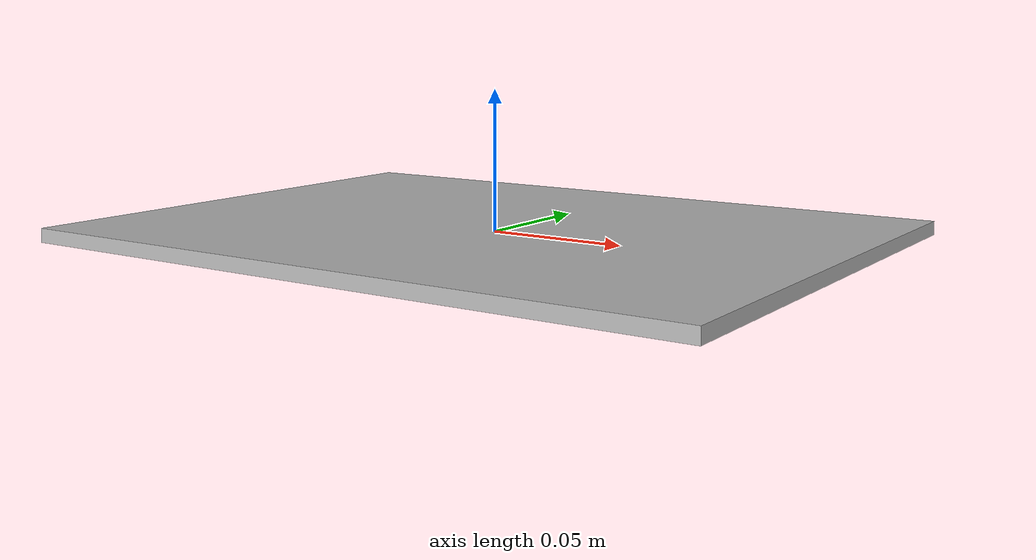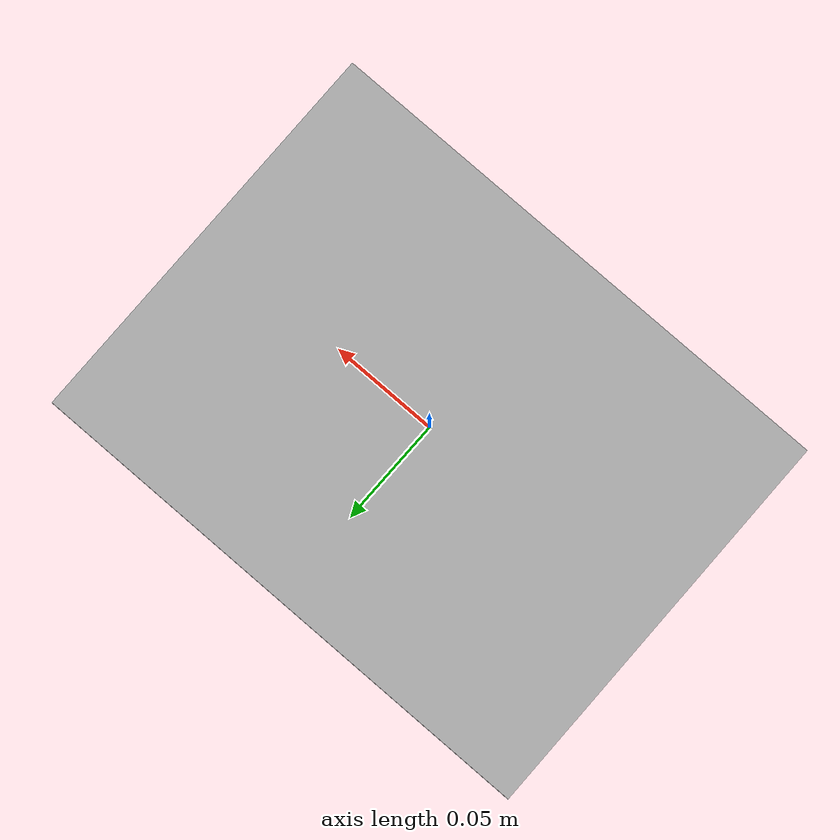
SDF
<?xml version="1.0" ?>
<sdf version="1.6">
  <model name="ChArUco_board">
    <static>true</static>
    <link name="link">
      <collision name="collision">
        <geometry>
          <mesh>
            <scale>1 1 1</scale>
            <uri>model://ChArUco_board/meshes/ChArUco_board.stl</uri>
          </mesh>
           <surface>
            <friction>
              <ode>
                <mu>1.2</mu>
                <mu2>1.2</mu2>
              </ode>
            </friction>
          </surface>
        </geometry>
      </collision>
      <visual name="visual">
        <geometry>
          <mesh>
            <scale>1 1 1</scale>
            <uri>model://ChArUco_board/meshes/ChArUco_board.dae</uri>
          </mesh>
        </geometry>
      </visual>
    </link>
  </model>
</sdf>
